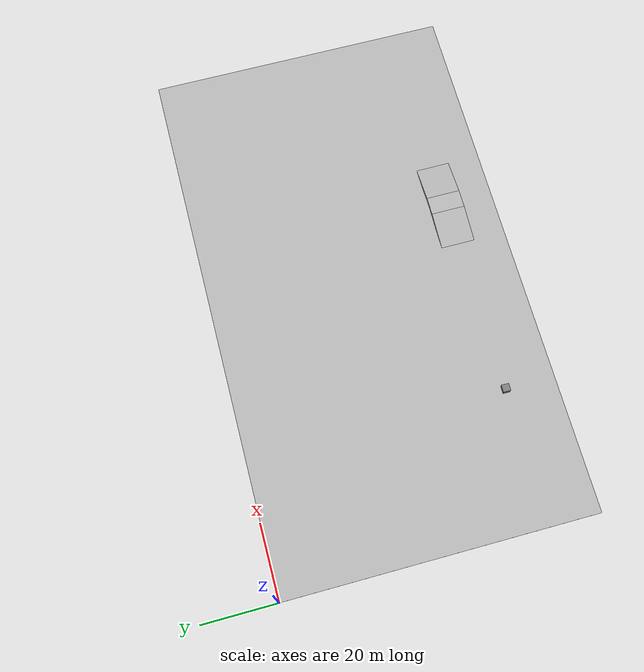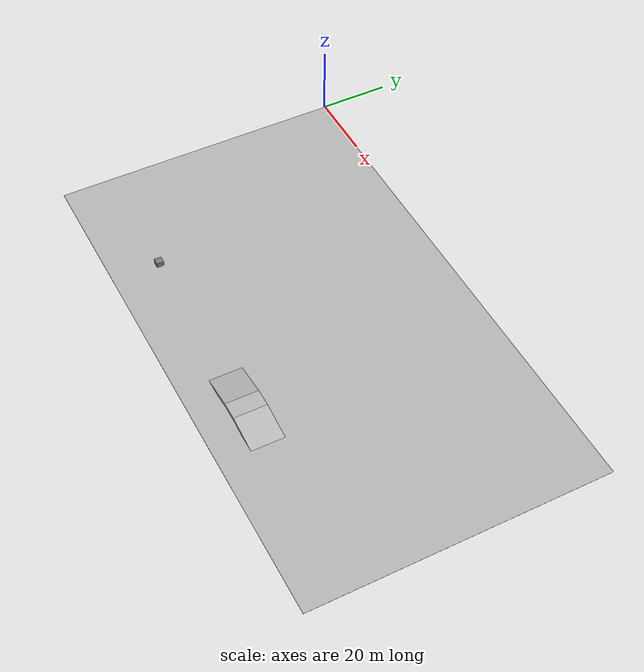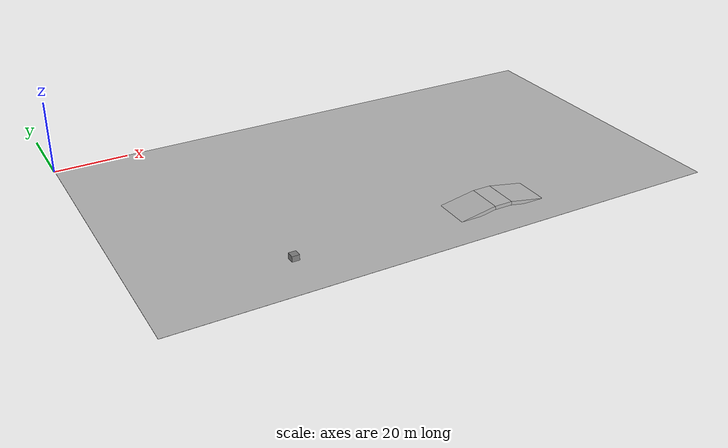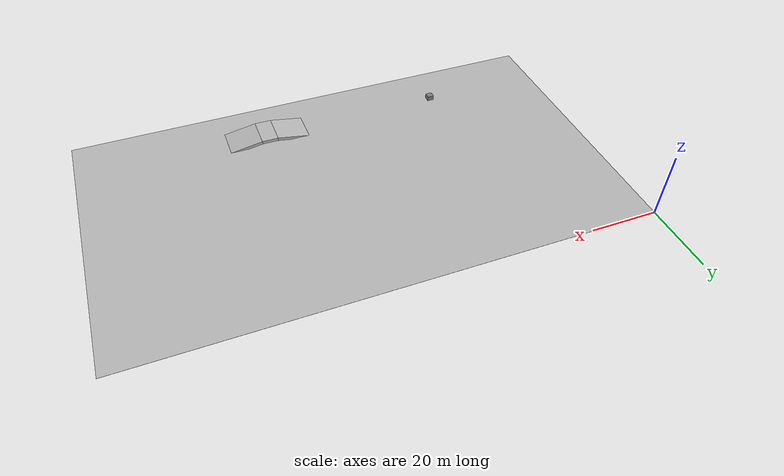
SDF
<sdf version="1.6">
 <world name="default">
  <model name="ground">
   <pose>75 -41.8 0 0 0 1.57</pose>
   <static>1</static>
   <link name="ground">
    <collision name="ground_coll"><geometry><box><size>83.6 150 0.05</size></box></geometry></collision>
    <visual name="ground_vis">
     <geometry><box><size>83.6 150  0.05</size></box></geometry>
     <material><script><uri>./course.material</uri><name>course</name></script></material>
    </visual>
   </link>
  </model>
  <model name="move_box">
   <pose>37 -70 0.5 0 0 0</pose>
   <link name="link_box">
    <collision name="collision_box"><geometry><box><size>2 2 2</size></box></geometry></collision>
    <visual name="visual_box">
     <geometry><box><size>2 2 2</size></box></geometry>
     <material><ambient>0.5 0.5 0.5 1</ambient><diffuse>0.5 0.5 0.5 1</diffuse></material>
    </visual>
   </link>
   <plugin name="ros_box_plugin" filename="libgazebo_ros_planar_move.so">
    <ros><namespace>robot1</namespace></ros>
    <update_rate>1000</update_rate>
   </plugin>
  </model>
  <model name="hill_1">
   <pose>85 -70.17 0.4 0 -0.1747 0</pose>
   <static>1</static>
   <link name="cube_link">
    <collision name="cube_coll"><geometry><box><size>10 9.3230 1</size></box></geometry></collision>
    <visual name="cube_vis">
     <geometry><box><size>10 9.3230 1</size></box></geometry>
     <material><script><uri>./course.material</uri><name>stop</name></script></material>
    </visual>
   </link>
  </model>
  <model name="hill_2">
   <pose>92.33 -70.17 1.26 0 0 0</pose>
   <static>1</static>
   <link name="cube_link">
    <collision name="cube_coll"><geometry><box><size>5 9.3230 1</size></box></geometry></collision>
    <visual name="cube_vis">
     <geometry><box><size>5 9.3230 1</size></box></geometry>
     <material><script><uri>./course.material</uri><name>line</name></script></material>
    </visual>
   </link>
  </model>
  <model name="hill_3">
   <pose>99.66 -70.17 0.4 0 0.1747 0</pose>
   <static>1</static>
   <link name="cube_link">
    <collision name="cube_coll"><geometry><box><size>10 9.3230 1</size></box></geometry></collision>
    <visual name="cube_vis">
     <geometry><box><size>10 9.3230 1</size></box></geometry>
     <material><script><uri>./course.material</uri><name>line</name></script></material>
    </visual>
   </link>
  </model>
  <include><uri>model://sun</uri></include>
 </world>
</sdf>
